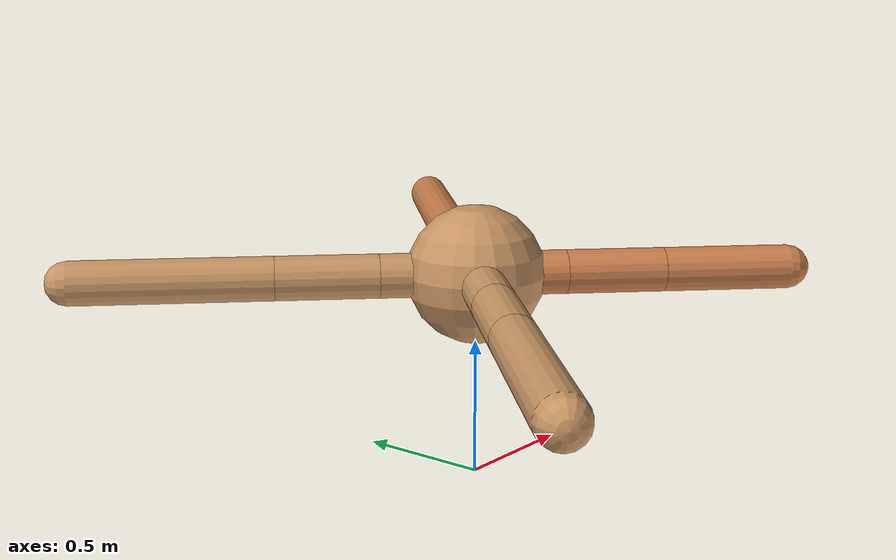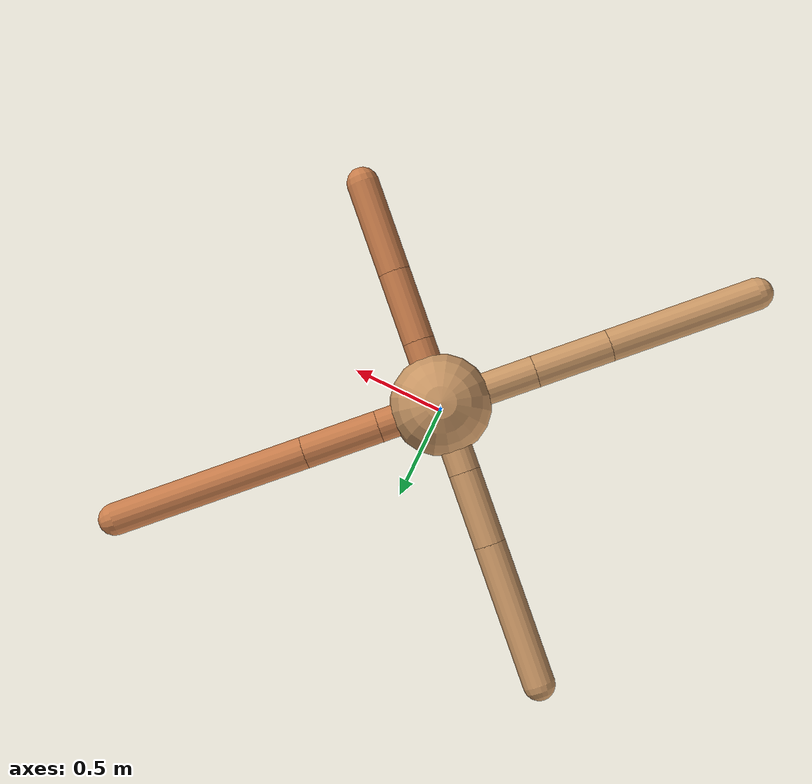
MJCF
<mujoco model="ant">
  <compiler angle="degree" coordinate="local" inertiafromgeom="true" />
  <option integrator="RK4" timestep="0.01" />
  <custom>
    <numeric data="0.0 0.0 0.55 1.0 0.0 0.0 0.0 0.0 1.0 0.0 -1.0 0.0 -1.0 0.0 1.0" name="init_qpos" />
  </custom>
  <default>
    <joint armature="1" damping="1" limited="true" />
    <geom conaffinity="0" condim="3" density="5.0" friction="1.5 0.1 0.1" margin="0.01" rgba="0.8 0.6 0.4 1" />
  </default>
  <worldbody>
    <body name="torso" pos="0 0 0.75">
      <geom name="torso_geom" pos="0 0 0" size="0.25" type="sphere" />

      <body name="front_left_leg" pos="0 0 0">
        <geom fromto="0.0 0.0 0.0 0.2257174955337197 0.2257174955337197 0.0" name="aux_1_geom" size="0.08" type="capsule" rgba=".8 .5 .3 1" />
        <body name="aux_1" pos="0.2257174955337197 0.2257174955337197 0.0">
          <joint axis="0 0 1" name="hip_1" pos="0.0 0.0 0.0" range="-40 40" type="hinge" />
          <geom fromto="0.0 0.0 0.0 0.2712859081476007 0.2712859081476007 0.0" name="left_leg_geom" size="0.08" type="capsule" rgba=".8 .5 .3 1" />
          <body pos="0.2712859081476007 0.2712859081476007 0.0" name="front_left_foot">
            <joint axis="-1 1 0" name="ankle_1" pos="0.0 0.0 0.0" range="30 100" type="hinge" />
            <geom fromto="0.0 0.0 0.0 0.6879477452591551 0.6879477452591551 0.0" name="left_ankle_geom" size="0.08" type="capsule" rgba=".8 .5 .3 1" />
          </body>
        </body>
      </body>
      <body name="front_right_leg" pos="0 0 0">
        <geom fromto="0.0 0.0 0.0 -0.24492423953122233 0.24492423953122233 0.0" name="aux_2_geom" size="0.08" type="capsule" />
        <body name="aux_2" pos="-0.24492423953122233 0.24492423953122233 0.0">
          <joint axis="0 0 1" name="hip_2" pos="0.0 0.0 0.0" range="-40 40" type="hinge" />
          <geom fromto="0.0 0.0 0.0 -0.2624086741870244 0.2624086741870244 0.0" name="right_leg_geom" size="0.08" type="capsule" />
          <body pos="-0.2624086741870244 0.2624086741870244 0.0" name="front_right_foot">
            <joint axis="1 1 0" name="ankle_2" pos="0.0 0.0 0.0" range="-100 -30" type="hinge" />
            <geom fromto="0.0 0.0 0.0 -0.5079933609630342 0.5079933609630342 0.0" name="right_ankle_geom" size="0.08" type="capsule" />
          </body>
        </body>
      </body>
      <body name="left_back_leg" pos="0 0 0">
        <geom fromto="0.0 0.0 0.0 -0.34258399053843885 -0.34258399053843885 0.0" name="aux_3_geom" size="0.08" type="capsule" />
        <body name="aux_3" pos="-0.34258399053843885 -0.34258399053843885 0.0">
          <joint axis="0 0 1" name="hip_3" pos="0.0 0.0 0.0" range="-40 40" type="hinge" />
          <geom fromto="0.0 0.0 0.0 -0.2717730126913671 -0.2717730126913671 0.0" name="back_leg_geom" size="0.08" type="capsule" />
          <body pos="-0.2717730126913671 -0.2717730126913671 0.0" name="left_back_foot">
            <joint axis="-1 1 0" name="ankle_3" pos="0.0 0.0 0.0" range="-100 -30" type="hinge" />
            <geom fromto="0.0 0.0 0.0 -0.5392740999508827 -0.5392740999508827 0.0" name="third_ankle_geom" size="0.08" type="capsule" />
          </body>
        </body>
      </body>
      <body name="right_back_leg" pos="0 0 0">
        <geom fromto="0.0 0.0 0.0 0.2314055958109995 -0.2314055958109995 0.0" name="aux_4_geom" size="0.08" type="capsule" rgba=".8 .5 .3 1" />
        <body name="aux_4" pos="0.2314055958109995 -0.2314055958109995 0.0">
          <joint axis="0 0 1" name="hip_4" pos="0.0 0.0 0.0" range="-40 40" type="hinge" />
          <geom fromto="0.0 0.0 0.0 0.25222914961859466 -0.25222914961859466 0.0" name="rightback_leg_geom" size="0.08" type="capsule" rgba=".8 .5 .3 1" />
          <body pos="0.25222914961859466 -0.25222914961859466 0.0" name="right_back_foot">
            <joint axis="1 1 0" name="ankle_4" pos="0.0 0.0 0.0" range="30 100" type="hinge" />
            <geom fromto="0.0 0.0 0.0 0.32651675261732366 -0.32651675261732366 0.0" name="fourth_ankle_geom" size="0.08" type="capsule" rgba=".8 .5 .3 1" />
          </body>
        </body>
      </body>
    </body>
  </worldbody>
  <actuator>
    <motor ctrllimited="true" ctrlrange="-1.0 1.0" joint="hip_4" gear="150" />
    <motor ctrllimited="true" ctrlrange="-1.0 1.0" joint="ankle_4" gear="150" />
    <motor ctrllimited="true" ctrlrange="-1.0 1.0" joint="hip_1" gear="150" />
    <motor ctrllimited="true" ctrlrange="-1.0 1.0" joint="ankle_1" gear="150" />
    <motor ctrllimited="true" ctrlrange="-1.0 1.0" joint="hip_2" gear="150" />
    <motor ctrllimited="true" ctrlrange="-1.0 1.0" joint="ankle_2" gear="150" />
    <motor ctrllimited="true" ctrlrange="-1.0 1.0" joint="hip_3" gear="150" />
    <motor ctrllimited="true" ctrlrange="-1.0 1.0" joint="ankle_3" gear="150" />
  </actuator>
</mujoco>
